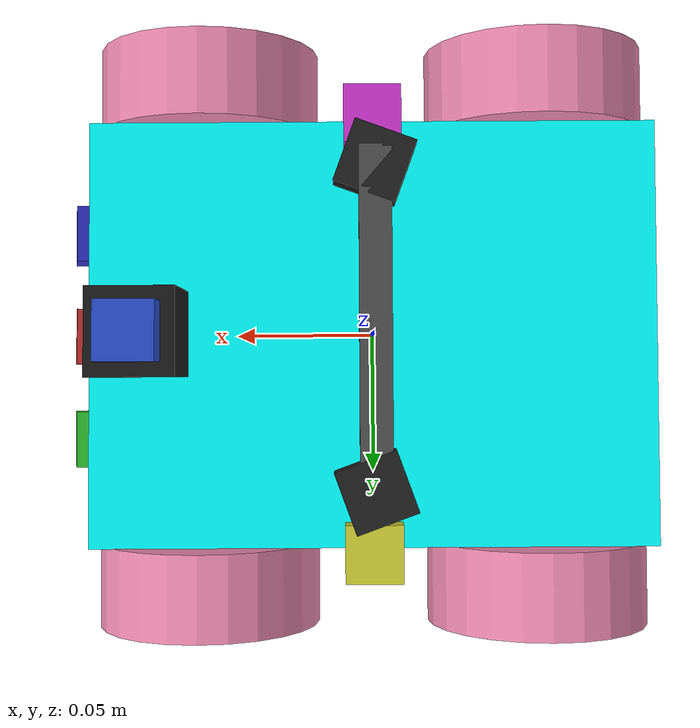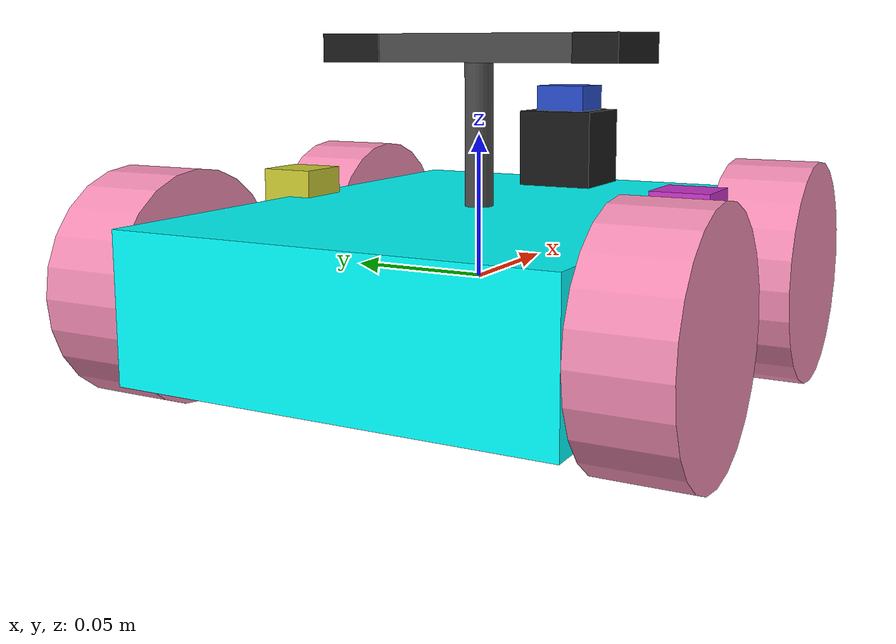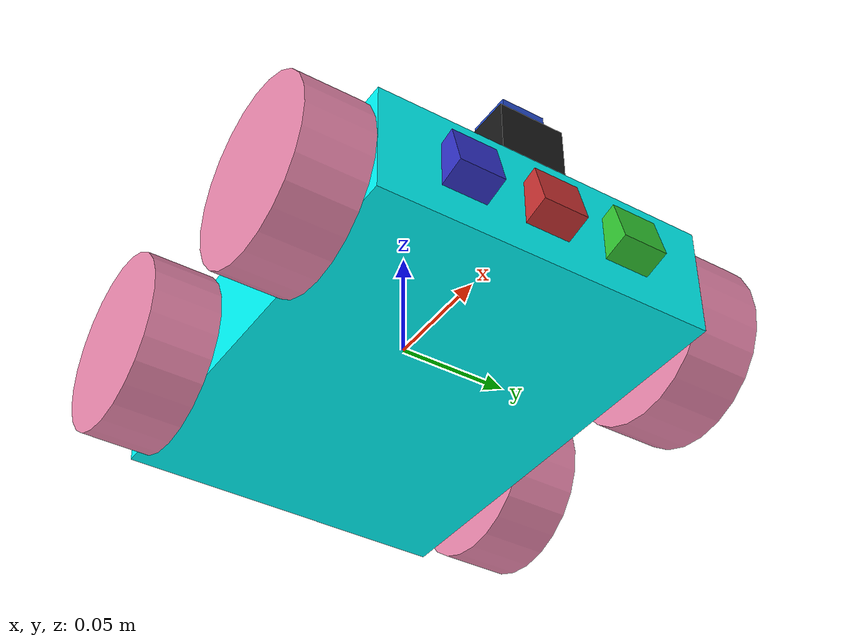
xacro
<?xml version='1.0'?>

<robot name="robot" xmlns:xacro="http://www.ros.org/wiki/xacro">

  <xacro:property name="camera_width" value="0.02"/>
  <xacro:property name="camera_length" value="0.02"/>
  <xacro:property name="camera_height" value="0.01"/>
  <xacro:property name="camera_mass" value="0.01"/>
  <xacro:property name="chassis_width" value="0.15"/>
  <xacro:property name="chassis_length" value="0.2"/>
  <xacro:property name="chassis_height" value="0.05"/>
  <xacro:property name="chassis_mass" value="0.5"/>
  <xacro:property name="wheel_radius" value="0.04"/>
  <xacro:property name="wheel_width" value="0.03"/>
  <xacro:property name="wheel_mass" value="0.025"/>

  <xacro:include filename="$(find robbie)/urdf/macros.xacro"/>
  <xacro:include filename="$(find robbie)/urdf/materials.xacro"/>

  <!-- Base link for the robot -->
  <link name="base_link"/>

  <joint name="base_to_chassis" type="fixed">
    <parent link="base_link"/>
    <child link="chassis"/>
    <origin xyz="0 0 0" rpy="0 0 0"/>
  </joint>

  <link name='chassis'>
    <xacro:box_inertial name="chassis" m="${chassis_mass}" x="${chassis_length}" y="${chassis_width}" z="${chassis_height}"/>
    <collision name='chassis_collision'>
      <geometry>
        <box size="${chassis_length} ${chassis_width} ${chassis_height}"/>
      </geometry>
    </collision>
    <visual name='chassis_visual'>
      <origin xyz="0 0 0" rpy=" 0 0 0"/>
      <geometry>
        <box size="${chassis_length} ${chassis_width} ${chassis_height}"/>
      </geometry>
      <material name="Cyan">
        <color rgba="0 1.0 1.0 1.0"/>
      </material>
    </visual>
  </link>

  <link name='wheel_FR'>
    <xacro:cylinder_inertial name="wheel_FR" m="${wheel_mass}" r="${wheel_radius}" h="${wheel_width}"/>
    <collision name='wheel_FR_collision'>
      <origin xyz="0 0 0" rpy="1.5708 0 0"/>
      <geometry>
        <cylinder radius="${wheel_radius}" length="${wheel_width}"/>
      </geometry>
    </collision>
    <visual name='wheel_FR_visual'>
      <origin xyz="0 0 0" rpy="1.5708 0 0"/>
      <geometry>
        <cylinder radius="${wheel_radius}" length="${wheel_width}"/>
      </geometry>
    </visual>
  </link>

  <link name='wheel_FL'>
    <xacro:cylinder_inertial name="wheel_FL" m="${wheel_mass}" r="${wheel_radius}" h="${wheel_width}"/>
    <collision name='wheel_FL_collision'>
      <origin xyz="0 0 0" rpy="1.5708 0 0"/>
      <geometry>
        <cylinder radius="${wheel_radius}" length="${wheel_width}"/>
      </geometry>
    </collision>
    <visual name='wheel_FL_visual'>
      <origin xyz="0 0 0" rpy="1.5708 0 0"/>
      <geometry>
        <cylinder radius="${wheel_radius}" length="${wheel_width}"/>
      </geometry>
    </visual>
  </link>

  <link name='wheel_RR'>
    <xacro:cylinder_inertial name="wheel_RR" m="${wheel_mass}" r="${wheel_radius}" h="${wheel_width}"/>
    <collision name='wheel_RR_collision'>
      <origin xyz="0 0 0" rpy="1.5708 0 0"/>
      <geometry>
        <cylinder radius="${wheel_radius}" length="${wheel_width}"/>
      </geometry>
    </collision>
    <visual name='wheel_RR_visual'>
      <origin xyz="0 0 0" rpy="1.5708 0 0"/>
      <geometry>
        <cylinder radius="${wheel_radius}" length="${wheel_width}"/>
      </geometry>
    </visual>
  </link>

  <link name='wheel_RL'>
    <xacro:cylinder_inertial name="wheel_RL" m="${wheel_mass}" r="${wheel_radius}" h="${wheel_width}"/>
    <collision name='wheel_RL_collision'>
      <origin xyz="0 0 0" rpy="1.5708 0 0"/>
      <geometry>
        <cylinder radius="${wheel_radius}" length="${wheel_width}"/>
      </geometry>
    </collision>
    <visual name='wheel_RL_visual'>
      <origin xyz="0 0 0" rpy="1.5708 0 0"/>
      <geometry>
        <cylinder radius="${wheel_radius}" length="${wheel_width}"/>
      </geometry>
    </visual>
  </link>

  <link name='camera_link'>
    <xacro:box_inertial name="camera_link" m="${camera_mass}" x="${camera_width}" y="${camera_length}" z="${camera_height}"/>
    <collision name='camera_link_collision'>
      <geometry>
        <box size="${camera_length} ${camera_width} ${camera_height}"/>
      </geometry>
    </collision>
    <visual name='camera_link_visual'>
      <origin xyz="0 0 0" rpy=" 0 0 0"/>
      <geometry>
        <box size="${camera_length} ${camera_width} ${camera_height}"/>
      </geometry>
    </visual>
  </link>

  <joint name="wheel_FR_joint" type="continuous">
    <parent link="chassis"/>
    <child link="wheel_FR"/>
    <origin xyz="${chassis_length/2-wheel_radius} -${chassis_width/2+wheel_width/2} 0"
            rpy="0 0 0"/>
    <axis xyz="0 1 0"/>
  </joint>

  <joint name="wheel_FL_joint" type="continuous">
    <parent link="chassis"/>
    <child link="wheel_FL"/>
    <origin xyz="${chassis_length/2-wheel_radius} ${chassis_width/2+wheel_width/2} 0"
            rpy="0 0 0"/>
    <axis xyz="0 1 0"/>
  </joint>

  <joint name="wheel_RR_joint" type="continuous">
    <parent link="chassis"/>
    <child link="wheel_RR"/>
    <origin xyz="-${chassis_length/2-wheel_radius} -${chassis_width/2+wheel_width/2} 0"
            rpy="0 0 0"/>
    <axis xyz="0 1 0"/>
  </joint>

  <joint name="wheel_RL_joint" type="continuous">
    <parent link="chassis"/>
    <child link="wheel_RL"/>
    <origin xyz="-${chassis_length/2-wheel_radius} ${chassis_width/2+wheel_width/2} 0"
            rpy="0 0 0"/>
    <axis xyz="0 1 0"/>
  </joint>

  <joint name="camera_joint" type="fixed">
    <parent link="hokuyo_link"/>
    <child link="camera_link"/>
    <origin xyz="0 0 0.02" rpy="0 0 0"/> <!-- Directly on top of lidar, level/horizontal -->
  </joint>

  <gazebo reference="chassis">
    <material>Gazebo/Purple</material>
  </gazebo>

  <gazebo reference="camera_link">
    <material>Gazebo/Blue</material>
  </gazebo>

  <gazebo reference="wheel_FL">
    <material>Gazebo/Pink</material>
  </gazebo>

  <gazebo reference="wheel_FR">
    <material>Gazebo/Pink</material>
  </gazebo>

  <gazebo reference="wheel_RL">
    <material>Gazebo/Pink</material>
  </gazebo>

  <gazebo reference="wheel_RR">
    <material>Gazebo/Pink</material>
  </gazebo>

  <gazebo>
    <plugin name="skid_steer_drive_controller" filename="libgazebo_ros_skid_steer_drive.so">
      <updateRate>100.0</updateRate>
      <leftFrontJoint>wheel_FL_joint</leftFrontJoint>
      <rightFrontJoint>wheel_FR_joint</rightFrontJoint>
      <leftRearJoint>wheel_RL_joint</leftRearJoint>
      <rightRearJoint>wheel_RR_joint</rightRearJoint>
      <wheelSeparation>0.4</wheelSeparation>
      <wheelDiameter>0.215</wheelDiameter>
      <robotBaseFrame>base_link</robotBaseFrame>
      <torque>20</torque>
      <topicName>cmd_vel</topicName>
      <broadcastTF>false</broadcastTF>
    </plugin>
  </gazebo>

  <!-- Collision detection for bumper sensors -->
  <link name="bumper_link">
    <collision name="bumper_collision">
      <origin xyz="0 0 0" rpy="0 0 0"/>
      <geometry>
        <box size="0.22 0.16 0.06"/>
      </geometry>
    </collision>
  </link>

  <joint name="bumper_joint" type="fixed">
    <parent link="chassis"/>
    <child link="bumper_link"/>
    <origin xyz="0 0 0"/>
  </joint>

  <gazebo reference="bumper_link">
    <sensor name="bumper_sensor" type="contact">
      <always_on>true</always_on>
      <update_rate>10.0</update_rate>
      <contact>
        <collision>bumper_collision</collision>
      </contact>
    </sensor>
  </gazebo>

  <gazebo reference="camera_link">
    <sensor type="camera" name="camera1">
      <update_rate>15.0</update_rate>
      <camera name="head">
        <horizontal_fov>2.1</horizontal_fov> <!-- 110 degrees (increased from 100) -->
        <image>
          <width>800</width>
          <height>800</height>
          <format>R8G8B8</format>
        </image>
        <clip>
          <near>0.02</near>
          <far>300</far>
        </clip>
        <noise>
          <type>gaussian</type>
          <!-- Noise is sampled independently per pixel on each frame.
              That pixel's noise value is added to each of its color
              channels, which at that point lie in the range [0,1]. -->
          <mean>0.0</mean>
          <stddev>0.007</stddev>
        </noise>
      </camera>
      <plugin name="camera_controller" filename="libgazebo_ros_camera.so">
        <alwaysOn>true</alwaysOn>
        <updateRate>0.0</updateRate>
        <cameraName>rrbot/camera1</cameraName>
        <imageTopicName>image_raw</imageTopicName>
        <cameraInfoTopicName>camera_info</cameraInfoTopicName>
        <frameName>camera_link</frameName>
        <hackBaseline>0.07</hackBaseline>
        <distortionK1>0.0</distortionK1>
        <distortionK2>0.0</distortionK2>
        <distortionK3>0.0</distortionK3>
        <distortionT1>0.0</distortionT1>
        <distortionT2>0.0</distortionT2>
      </plugin>
    </sensor>
  </gazebo>

  <!-- LIDAR Link -->
  <link name="hokuyo_link">
    <collision>
      <origin xyz="0 0 0" rpy="0 0 0"/>
      <geometry>
        <box size="0.03 0.03 0.03"/>
      </geometry>
    </collision>
    <visual>
      <origin xyz="0 0 0" rpy="0 0 0"/>
      <geometry>
        <box size="0.03 0.03 0.03"/>
      </geometry>
      <material name="hokuyo_material">
        <color rgba="0.1 0.1 0.1 1"/>
      </material>
    </visual>
    <inertial>
      <mass value="1e-5" />
      <origin xyz="0 0 0" rpy="0 0 0"/>
      <inertia ixx="1e-6" ixy="0" ixz="0" iyy="1e-6" iyz="0" izz="1e-6" />
    </inertial>
  </link>

  <joint name="hokuyo_joint" type="fixed">
    <axis xyz="0 1 0" />
    <origin xyz="0.08 0 0.04" rpy="0 0 0"/> <!-- Moved forward on top of chassis -->
    <parent link="chassis"/>
    <child link="hokuyo_link"/>
  </joint>

  <gazebo reference="hokuyo_link">
    <sensor type="ray" name="head_hokuyo_sensor">
      <pose>0 0 0 0 0 0</pose>
      <visualize>false</visualize>
      <update_rate>40</update_rate>
      <ray>
        <scan>
          <horizontal>
            <samples>720</samples>
            <resolution>1</resolution>
            <min_angle>-1.570796</min_angle>
            <max_angle>1.570796</max_angle>
          </horizontal>
        </scan>
        <range>
          <min>0.10</min>
          <max>30.0</max>
          <resolution>0.01</resolution>
        </range>
        <noise>
          <type>gaussian</type>
          <mean>0.0</mean>
          <stddev>0.01</stddev>
        </noise>
      </ray>
      <plugin name="gazebo_ros_head_hokuyo_controller" filename="libgazebo_ros_laser.so">
        <topicName>scan</topicName>
        <frameName>hokuyo_link</frameName>
      </plugin>
    </sensor>
  </gazebo>

  <!-- Front Low LIDAR Link - for close obstacle detection -->
  <link name="front_lidar_link">
    <collision>
      <origin xyz="0 0 0" rpy="0 0 0"/>
      <geometry>
        <box size="0.02 0.02 0.02"/>
      </geometry>
    </collision>
    <visual>
      <origin xyz="0 0 0" rpy="0 0 0"/>
      <geometry>
        <box size="0.02 0.02 0.02"/>
      </geometry>
      <material name="front_lidar_material">
        <color rgba="0.8 0.2 0.2 1"/>
      </material>
    </visual>
    <inertial>
      <mass value="1e-5" />
      <origin xyz="0 0 0" rpy="0 0 0"/>
      <inertia ixx="1e-6" ixy="0" ixz="0" iyy="1e-6" iyz="0" izz="1e-6" />
    </inertial>
  </link>

  <joint name="front_lidar_joint" type="fixed">
    <axis xyz="0 1 0" />
    <origin xyz="0.10 0 0.0" rpy="0 -0.25 0"/> <!-- Directly on front face, pitched up ~15.5 degrees -->
    <parent link="chassis"/>
    <child link="front_lidar_link"/>
  </joint>

  <gazebo reference="front_lidar_link">
    <sensor type="ray" name="front_lidar_sensor">
      <pose>0 0 0 0 0 0</pose>
      <visualize>true</visualize>
      <update_rate>40</update_rate>
      <ray>
        <scan>
          <horizontal>
            <samples>300</samples>
            <resolution>1</resolution>
            <min_angle>-0.3800</min_angle>  <!-- -27.5 degrees -->
            <max_angle>0.3800</max_angle>   <!-- +27.5 degrees (55 degree plane) -->
          </horizontal>
        </scan>
        <range>
          <min>0.035</min>   <!-- Minimum 3.5cm to avoid self-detection -->
          <max>0.5</max>    <!-- Short range for obstacle detection -->
          <resolution>0.005</resolution>
        </range>
        <noise>
          <type>gaussian</type>
          <mean>0.0</mean>
          <stddev>0.005</stddev>
        </noise>
      </ray>
      <plugin name="gazebo_ros_front_lidar_controller" filename="libgazebo_ros_laser.so">
        <topicName>front_scan</topicName>
        <frameName>front_lidar_link</frameName>
      </plugin>
    </sensor>
  </gazebo>

  <!-- Left Edge LIDAR Link -->
  <link name="left_lidar_link">
    <collision>
      <origin xyz="0 0 0" rpy="0 0 0"/>
      <geometry>
        <box size="0.02 0.02 0.02"/>
      </geometry>
    </collision>
    <visual>
      <origin xyz="0 0 0" rpy="0 0 0"/>
      <geometry>
        <box size="0.02 0.02 0.02"/>
      </geometry>
      <material name="left_lidar_material">
        <color rgba="0.2 0.8 0.2 1"/>
      </material>
    </visual>
    <inertial>
      <mass value="1e-5" />
      <origin xyz="0 0 0" rpy="0 0 0"/>
      <inertia ixx="1e-6" ixy="0" ixz="0" iyy="1e-6" iyz="0" izz="1e-6" />
    </inertial>
  </link>

  <joint name="left_lidar_joint" type="fixed">
    <axis xyz="0 1 0" />
    <origin xyz="0.10 0.0375 0.0" rpy="0 -0.25 0"/> <!-- On front face, 1/4 from left edge, pitched up ~15.5 degrees -->
    <parent link="chassis"/>
    <child link="left_lidar_link"/>
  </joint>

  <gazebo reference="left_lidar_link">
    <sensor type="ray" name="left_lidar_sensor">
      <pose>0 0 0 0 0 0</pose>
      <visualize>true</visualize>
      <update_rate>40</update_rate>
      <ray>
        <scan>
          <horizontal>
            <samples>300</samples> <!-- 45 degrees scan, 5x resolution -->
            <resolution>1</resolution>
            <min_angle>0.17</min_angle>   <!-- 15 degrees -->
            <max_angle>1.1</max_angle>   <!-- 60 degrees -->
          </horizontal>
        </scan>
        <range>
          <min>0.035</min>
          <max>0.5</max>
          <resolution>0.005</resolution>
        </range>
        <noise>
          <type>gaussian</type>
          <mean>0.0</mean>
          <stddev>0.005</stddev>
        </noise>
      </ray>
      <plugin name="gazebo_ros_left_lidar_controller" filename="libgazebo_ros_laser.so">
        <topicName>left_scan</topicName>
        <frameName>left_lidar_link</frameName>
      </plugin>
    </sensor>
  </gazebo>

  <!-- Right Edge LIDAR Link -->
  <link name="right_lidar_link">
    <collision>
      <origin xyz="0 0 0" rpy="0 0 0"/>
      <geometry>
        <box size="0.02 0.02 0.02"/>
      </geometry>
    </collision>
    <visual>
      <origin xyz="0 0 0" rpy="0 0 0"/>
      <geometry>
        <box size="0.02 0.02 0.02"/>
      </geometry>
      <material name="right_lidar_material">
        <color rgba="0.2 0.2 0.8 1"/>
      </material>
    </visual>
    <inertial>
      <mass value="1e-5" />
      <origin xyz="0 0 0" rpy="0 0 0"/>
      <inertia ixx="1e-6" ixy="0" ixz="0" iyy="1e-6" iyz="0" izz="1e-6" />
    </inertial>
  </link>

  <joint name="right_lidar_joint" type="fixed">
    <axis xyz="0 1 0" />
    <origin xyz="0.10 -0.0375 0.0" rpy="0 -0.25 0"/> <!-- On front face, 1/4 from right edge, pitched up ~15.5 degrees -->
    <parent link="chassis"/>
    <child link="right_lidar_link"/>
  </joint>

  <gazebo reference="right_lidar_link">
    <sensor type="ray" name="right_lidar_sensor">
      <pose>0 0 0 0 0 0</pose>
      <visualize>true</visualize>
      <update_rate>40</update_rate>
      <ray>
        <scan>
          <horizontal>
            <samples>300</samples> <!-- 45 degrees scan, 5x resolution -->
            <resolution>1</resolution>
            <min_angle>-1.1</min_angle>  <!-- -60 degrees -->
            <max_angle>-0.17</max_angle>  <!-- -15 degrees -->
          </horizontal>
        </scan>
        <range>
          <min>0.035</min>
          <max>0.5</max>
          <resolution>0.005</resolution>
        </range>
        <noise>
          <type>gaussian</type>
          <mean>0.0</mean>
          <stddev>0.005</stddev>
        </noise>
      </ray>
      <plugin name="gazebo_ros_right_lidar_controller" filename="libgazebo_ros_laser.so">
        <topicName>right_scan</topicName>
        <frameName>right_lidar_link</frameName>
      </plugin>
    </sensor>
  </gazebo>

  <!-- Left Side LIDAR Link -->
  <link name="side_left_lidar_link">
    <collision>
      <origin xyz="0 0 0" rpy="0 0 0"/>
      <geometry>
        <box size="0.02 0.02 0.02"/>
      </geometry>
    </collision>
    <visual>
      <origin xyz="0 0 0" rpy="0 0 0"/>
      <geometry>
        <box size="0.02 0.02 0.02"/>
      </geometry>
      <material name="side_left_lidar_material">
        <color rgba="0.8 0.8 0.2 1"/>
      </material>
    </visual>
    <inertial>
      <mass value="1e-5" />
      <origin xyz="0 0 0" rpy="0 0 0"/>
      <inertia ixx="1e-6" ixy="0" ixz="0" iyy="1e-6" iyz="0" izz="1e-6" />
    </inertial>
  </link>

  <joint name="side_left_lidar_joint" type="fixed">
    <axis xyz="0 1 0" />
    <origin xyz="0.0 0.076 0.025" rpy="0 0 1.570796"/> <!-- Center of left edge, pointing left -->
    <parent link="chassis"/>
    <child link="side_left_lidar_link"/>
  </joint>

  <gazebo reference="side_left_lidar_link">
    <sensor type="ray" name="side_left_lidar_sensor">
      <pose>0 0 0 0 0 0</pose>
      <visualize>false</visualize>
      <update_rate>40</update_rate>
      <ray>
        <scan>
          <horizontal>
            <samples>300</samples>
            <resolution>1</resolution>
            <min_angle>-0.523599</min_angle> <!-- -30 degrees -->
            <max_angle>0.523599</max_angle>  <!-- +30 degrees (60 degree total) -->
          </horizontal>
        </scan>
        <range>
          <min>0.02</min>
          <max>0.25</max>
          <resolution>0.005</resolution>
        </range>
        <noise>
          <type>gaussian</type>
          <mean>0.0</mean>
          <stddev>0.005</stddev>
        </noise>
      </ray>
      <plugin name="gazebo_ros_side_left_lidar_controller" filename="libgazebo_ros_laser.so">
        <topicName>side_left_scan</topicName>
        <frameName>side_left_lidar_link</frameName>
      </plugin>
    </sensor>
  </gazebo>

  <!-- Right Side LIDAR Link -->
  <link name="side_right_lidar_link">
    <collision>
      <origin xyz="0 0 0" rpy="0 0 0"/>
      <geometry>
        <box size="0.02 0.02 0.02"/>
      </geometry>
    </collision>
    <visual>
      <origin xyz="0 0 0" rpy="0 0 0"/>
      <geometry>
        <box size="0.02 0.02 0.02"/>
      </geometry>
      <material name="side_right_lidar_material">
        <color rgba="0.8 0.2 0.8 1"/>
      </material>
    </visual>
    <inertial>
      <mass value="1e-5" />
      <origin xyz="0 0 0" rpy="0 0 0"/>
      <inertia ixx="1e-6" ixy="0" ixz="0" iyy="1e-6" iyz="0" izz="1e-6" />
    </inertial>
  </link>

  <joint name="side_right_lidar_joint" type="fixed">
    <axis xyz="0 1 0" />
    <origin xyz="0.0 -0.076 0.025" rpy="0 0 -1.570796"/> <!-- Center of right edge, pointing right -->
    <parent link="chassis"/>
    <child link="side_right_lidar_link"/>
  </joint>

  <gazebo reference="side_right_lidar_link">
    <sensor type="ray" name="side_right_lidar_sensor">
      <pose>0 0 0 0 0 0</pose>
      <visualize>false</visualize>
      <update_rate>40</update_rate>
      <ray>
        <scan>
          <horizontal>
            <samples>300</samples>
            <resolution>1</resolution>
            <min_angle>-0.523599</min_angle> <!-- -30 degrees -->
            <max_angle>0.523599</max_angle>  <!-- +30 degrees (60 degree total) -->
          </horizontal>
        </scan>
        <range>
          <min>0.02</min>
          <max>0.25</max>
          <resolution>0.005</resolution>
        </range>
        <noise>
          <type>gaussian</type>
          <mean>0.0</mean>
          <stddev>0.005</stddev>
        </noise>
      </ray>
      <plugin name="gazebo_ros_side_right_lidar_controller" filename="libgazebo_ros_laser.so">
        <topicName>side_right_scan</topicName>
        <frameName>side_right_lidar_link</frameName>
      </plugin>
    </sensor>
  </gazebo>

  <!-- Camera mount structure -->
  <!-- Vertical post from chassis -->
  <link name="camera_mount_post">
    <inertial>
      <mass value="0.02"/>
      <inertia ixx="1e-6" iyy="1e-6" izz="1e-6" ixy="0" ixz="0" iyz="0"/>
    </inertial>
    <collision>
      <geometry>
        <cylinder radius="0.005" length="0.055"/>
      </geometry>
    </collision>
    <visual>
      <geometry>
        <cylinder radius="0.005" length="0.055"/>
      </geometry>
      <material name="mount_material">
        <color rgba="0.3 0.3 0.3 1"/>
      </material>
    </visual>
  </link>

  <joint name="camera_mount_post_joint" type="fixed">
    <parent link="chassis"/>
    <child link="camera_mount_post"/>
    <!-- Post at front of chassis, from top (z=0.025) up to camera height (z=0.08) -->
    <origin xyz="${chassis_length/2 - 0.1} 0 0.0525" rpy="0 0 0"/>
  </joint>

  <!-- Horizontal crossbar connecting both cameras -->
  <link name="camera_mount_crossbar">
    <inertial>
      <mass value="0.01"/>
      <inertia ixx="1e-6" iyy="1e-6" izz="1e-6" ixy="0" ixz="0" iyz="0"/>
    </inertial>
    <collision>
      <geometry>
        <box size="0.01 0.11 0.01"/>
      </geometry>
    </collision>
    <visual>
      <geometry>
        <box size="0.01 0.11 0.01"/>
      </geometry>
      <material name="crossbar_material">
        <color rgba="0.3 0.3 0.3 1"/>
      </material>
    </visual>
  </link>

  <joint name="camera_mount_crossbar_joint" type="fixed">
    <parent link="camera_mount_post"/>
    <child link="camera_mount_crossbar"/>
    <!-- Crossbar at top of post, spanning from y=-0.05 to y=+0.05 -->
    <origin xyz="0 0 0.0275" rpy="0 0 0"/>
  </joint>

  <!-- Left cam -->
  <link name="left_front_cam_link">
    <inertial>
      <mass value="0.01"/>
      <inertia ixx="1e-6" iyy="1e-6" izz="1e-6" ixy="0" ixz="0" iyz="0"/>
    </inertial>
    <visual>
      <geometry>
        <box size="0.02 0.02 0.01"/>
      </geometry>
      <material name="Gazebo/Black"/>
    </visual>
  </link>

  <joint name="left_front_cam_joint" type="fixed">
    <parent link="camera_mount_crossbar"/>
    <child link="left_front_cam_link"/>
    <!-- Attached to left end of crossbar, tilted outward -->
    <origin xyz="0 0.05 0" rpy="0 0 0.3491"/>
  </joint>

  <gazebo reference="left_front_cam_link">
    <sensor type="camera" name="left_front_camera_sensor">
      <always_on>true</always_on>
      <update_rate>15</update_rate>
      <camera>
        <horizontal_fov>1.396</horizontal_fov>
        <image>
          <width>1280</width>
          <height>720</height>
          <format>R8G8B8</format>
        </image>
        <clip>
          <near>0.02</near>
          <far>200</far>
        </clip>
      </camera>

      <plugin name="left_front_camera_controller" filename="libgazebo_ros_camera.so">
        <cameraName>left_front_cam</cameraName>
        <imageTopicName>left_front/image_raw</imageTopicName>
        <cameraInfoTopicName>left_front/camera_info</cameraInfoTopicName>
        <frameName>left_front_cam_link</frameName>
      </plugin>
    </sensor>
  </gazebo>

  <!-- Right cam -->
  <link name="right_front_cam_link">
    <inertial>
      <mass value="0.01"/>
      <inertia ixx="1e-6" iyy="1e-6" izz="1e-6" ixy="0" ixz="0" iyz="0"/>
    </inertial>
    <visual>
      <geometry>
        <box size="0.02 0.02 0.01"/>
      </geometry>
      <material name="Gazebo/Black"/>
    </visual>
  </link>

  <joint name="right_front_cam_joint" type="fixed">
    <parent link="camera_mount_crossbar"/>
    <child link="right_front_cam_link"/>
    <!-- Attached to right end of crossbar, tilted outward -->
    <origin xyz="0 -0.05 0" rpy="0 0 -0.3491"/>
  </joint>

  <gazebo reference="right_front_cam_link">
    <sensor type="camera" name="right_front_camera_sensor">
      <always_on>true</always_on>
      <update_rate>15</update_rate>
      <camera>
        <horizontal_fov>1.396</horizontal_fov>
        <image>
          <width>1280</width>
          <height>720</height>
          <format>R8G8B8</format>
        </image>
        <clip>
          <near>0.02</near>
          <far>200</far>
        </clip>
      </camera>

      <plugin name="right_front_camera_controller" filename="libgazebo_ros_camera.so">
        <cameraName>right_front_cam</cameraName>
        <imageTopicName>right_front/image_raw</imageTopicName>
        <cameraInfoTopicName>right_front/camera_info</cameraInfoTopicName>
        <frameName>right_front_cam_link</frameName>
      </plugin>
    </sensor>
  </gazebo>

</robot>

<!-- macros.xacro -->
<robot xmlns:xacro="http://www.ros.org/wiki/xacro">
  <xacro:macro name="cylinder_inertial" params="name m r h">
    <inertial name="${name}_inertial">
      <mass value="${m}"/>
      <inertia  ixx="${m*(3*r*r+h*h)/12}" ixy = "0" ixz = "0"
        iyy="${m*(3*r*r+h*h)/12}" iyz = "0"
        izz="${m*r*r/2}"/>
    </inertial>
  </xacro:macro>

  <xacro:macro name="box_inertial" params="name m x y z">
    <inertial name="${name}_inertial">
      <mass value="${m}"/>
      <inertia  ixx="${m*(y*y+z*z)/12}" ixy = "0" ixz = "0"
        iyy="${m*(x*x+y*y)/12}" iyz = "0"
        izz="${m*(x*x+z*z)/12}"/>
    </inertial>
  </xacro:macro>

  <xacro:macro name="sphere_inertial" params="name m r">
    <inertial name="${name}_inertial">
      <mass value="${m}"/>
      <inertia  ixx="${2*m*r*r/5}" ixy = "0" ixz = "0"
        iyy="${2*m*r*r/5}" iyz = "0"
        izz="${2*m*r*r/5}"/>
    </inertial>
  </xacro:macro>
</robot>
